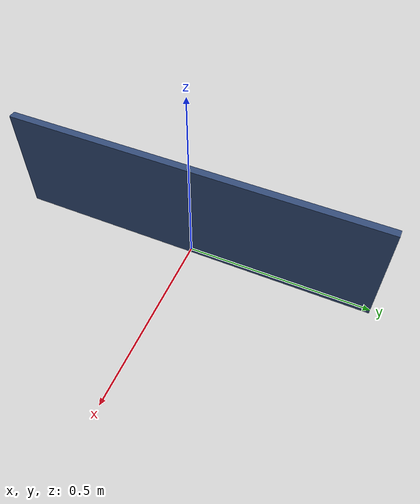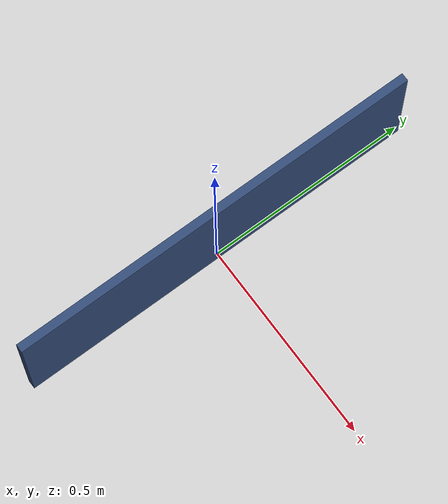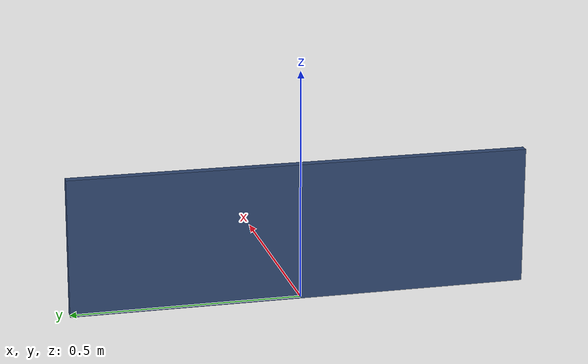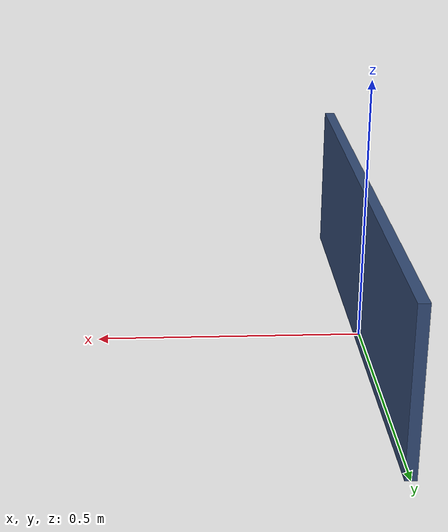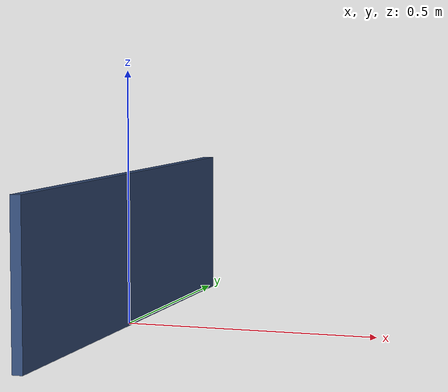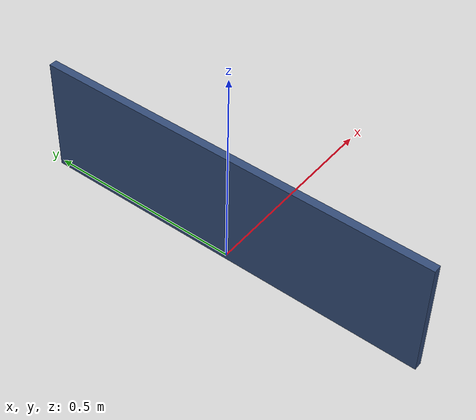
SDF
<?xml version="1.0" ?>
<sdf version="1.4">
    <model name='low_wall'>
      <link name='link'>
        <inertial>
          <mass>50</mass>
          <inertia>
            <ixx>1</ixx>
            <ixy>0</ixy>
            <ixz>0</ixz>
            <iyy>1</iyy>
            <iyz>0</iyz>
            <izz>1</izz>
          </inertia>
        </inertial>
        <visual name='wall'>
          <pose>0 0 0.15 0 0 0</pose>
          <geometry>
            <box>
              <size>0.02 1.0 0.3</size>
            </box>
          </geometry>
          <material>
            <!-- color:cornflowerblue -->
            <ambient>0.392 0.584 0.929 1</ambient>
            <diffuse>0.196 0.292 0.4645 1</diffuse>
            <specular>0 0 0 1</specular>
          </material>
        </visual>
        <collision name='collision_wall'>
          <pose>0 0 0.15 0 0 0</pose>
          <geometry>
            <box>
              <size>0.02 1.0 0.3</size>
            </box>
          </geometry>
          <max_contacts>10</max_contacts>
          <surface>
            <bounce/>
            <friction>
              <ode/>
            </friction>
            <contact>
              <ode/>
            </contact>
          </surface>
        </collision>
        <velocity_decay>
          <linear>0</linear>
          <angular>0</angular>
        </velocity_decay>
        <self_collide>0</self_collide>
        <kinematic>0</kinematic>
        <gravity>1</gravity>
      </link>
      <static>1</static>
    </model>
</sdf>
